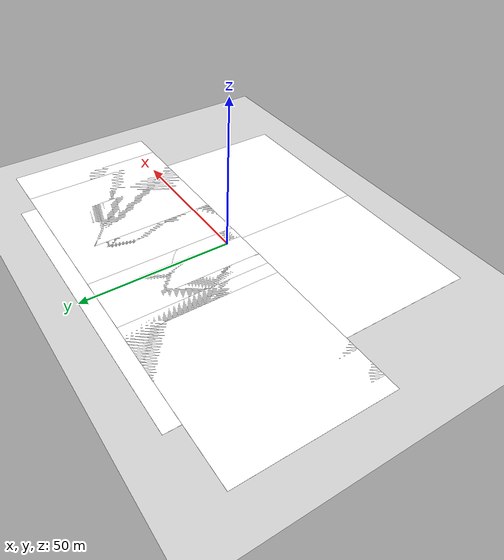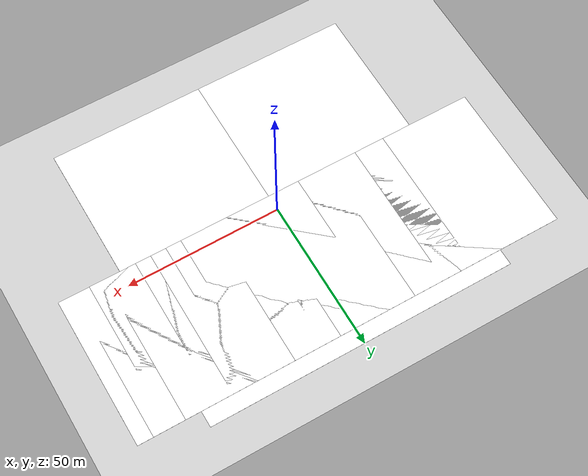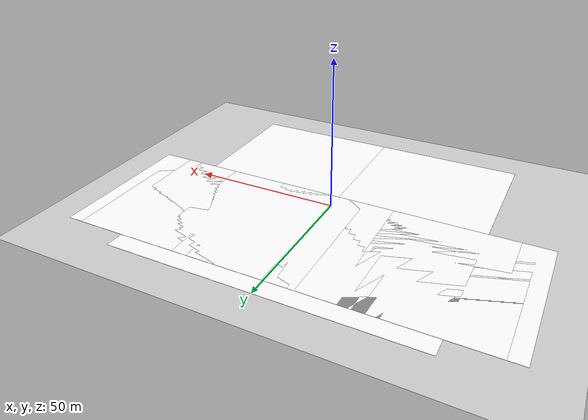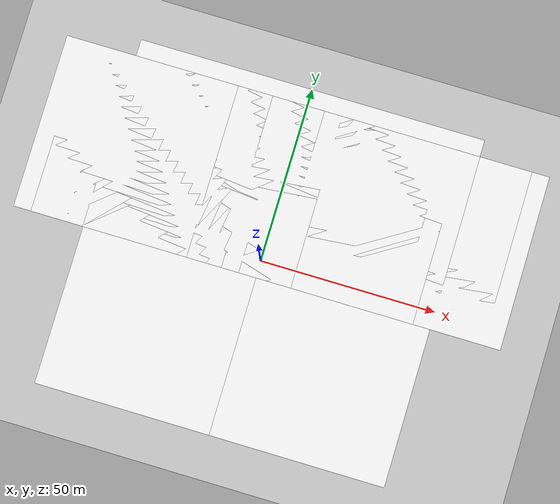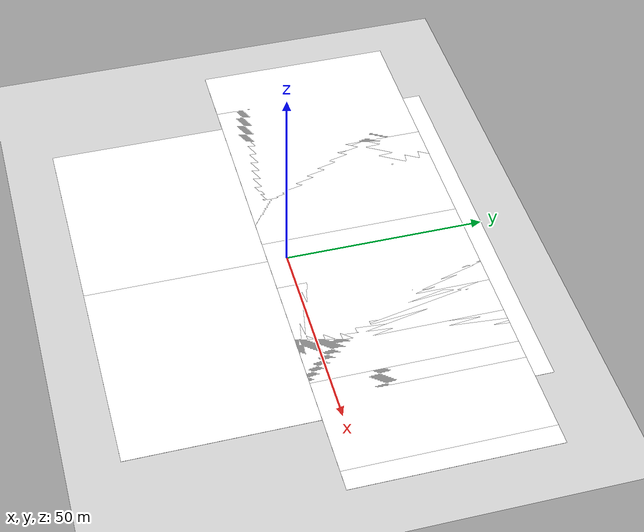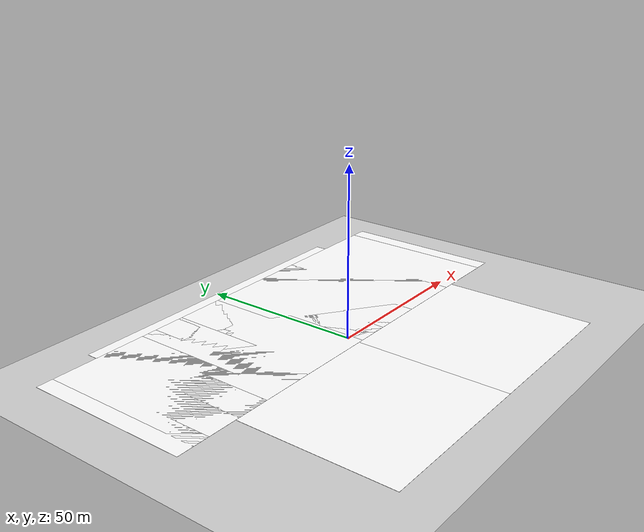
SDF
<sdf version="1.9">
 <world name="impact_site">
  <physics name="1ms" type="ignore">
   <max_step_size>0.001</max_step_size>
   <real_time_factor>1.0</real_time_factor>
  </physics>
  <plugin filename="gz-sim-physics-system" name="gz::sim::systems::Physics"/>
  <plugin filename="gz-sim-sensors-system" name="gz::sim::systems::Sensors">
   <render_engine>ogre2</render_engine>
  </plugin>
  <plugin filename="gz-sim-user-commands-system" name="gz::sim::systems::UserCommands"/>
  <plugin filename="gz-sim-scene-broadcaster-system" name="gz::sim::systems::SceneBroadcaster"/>
  <plugin filename="gz-sim-imu-system" name="gz::sim::systems::Imu"/>
  <plugin filename="gz-sim-navsat-system" name="gz::sim::systems::NavSat"/>
  <scene><ambient>1.0 1.0 1.0</ambient><background>0.8 0.8 0.8</background></scene>
  <spherical_coordinates>
   <latitude_deg>-35.363262</latitude_deg>
   <longitude_deg>149.165237</longitude_deg>
   <elevation>584</elevation>
   <heading_deg>0</heading_deg>
   <surface_model>EARTH_WGS84</surface_model>
  </spherical_coordinates>
  <light type="directional" name="sun">
   <pose>0 0 10 0 0 0</pose>
   <diffuse>0.8 0.8 0.8 1</diffuse>
   <specular>0.8 0.8 0.8 1</specular>
   <attenuation>
    <range>1000</range>
    <constant>0.9</constant>
    <linear>0.01</linear>
    <quadratic>0.001</quadratic>
   </attenuation>
   <direction>-0.5 0.1 -0.9</direction>
  </light>
  <include><uri>model://ground_plane</uri></include>
  <include><uri>model://grasspatch/1</uri><name>grasspatch</name><pose>-25 -25 0.001 0 0 0</pose></include>
  <include><uri>model://grasspatch/1</uri><name>grasspatch2</name><pose>-25 25 0.001 0 0 0</pose></include>
  <include><uri>model://grasspatch/1</uri><name>grasspatch3</name><pose>25 -25 0.001 0 0 0</pose></include>
  <include><uri>model://grasspatch/1</uri><name>grasspatch4</name><pose>25 25 0.001 0 0 0</pose></include>
  <include><uri>model://room_wall_2x5m/1</uri><name>wall_1</name><pose>-45 20 1.001 0 0 1.5708</pose></include>
  <include><uri>model://room_wall_2x5m/1</uri><name>wall_2</name><pose>-40 20 1.001 0 0 1.5708</pose></include>
  <include><uri>model://room_wall_2x5m/1</uri><name>wall_3</name><pose>-35 20 1.001 0 0 1.5708</pose></include>
  <include><uri>model://room_wall_2x5m/1</uri><name>wall_4</name><pose>-30 20 1.001 0 0 1.5708</pose></include>
  <include><uri>model://room_wall_2x5m/1</uri><name>wall_5</name><pose>-25 20 1.001 0 0 1.5708</pose></include>
  <include><uri>model://room_wall_2x5m/1</uri><name>wall_6</name><pose>-20 20 1.001 0 0 1.5708</pose></include>
  <include><uri>model://room_wall_2x5m/1</uri><name>wall_7</name><pose>-15 20 1.001 0 0 1.5708</pose></include>
  <include><uri>model://room_wall_2x5m/1</uri><name>wall_8</name><pose>-10 20 1.001 0 0 1.5708</pose></include>
  <include><uri>model://room_wall_2x5m/1</uri><name>wall_9</name><pose>-5 20 1.001 0 0 1.5708</pose></include>
  <include><uri>model://room_wall_2x5m/1</uri><name>wall_10</name><pose>0 20 1.001 0 0 1.5708</pose></include>
  <include><uri>model://room_wall_2x5m/1</uri><name>wall_11</name><pose>5 20 1.001 0 0 1.5708</pose></include>
  <include><uri>model://room_wall_2x5m/1</uri><name>wall_12</name><pose>10 20 1.001 0 0 1.5708</pose></include>
  <include><uri>model://room_wall_2x5m/1</uri><name>wall_13</name><pose>15 20 1.001 0 0 1.5708</pose></include>
  <include><uri>model://room_wall_2x5m/1</uri><name>wall_14</name><pose>20 20 1.001 0 0 1.5708</pose></include>
  <include><uri>model://room_wall_2x5m/1</uri><name>wall_15</name><pose>25 20 1.001 0 0 1.5708</pose></include>
  <include><uri>model://room_wall_2x5m/1</uri><name>wall_16</name><pose>30 20 1.001 0 0 1.5708</pose></include>
  <include><uri>model://room_wall_2x5m/1</uri><name>wall_17</name><pose>35 20 1.001 0 0 1.5708</pose></include>
  <include><uri>model://room_wall_2x5m/1</uri><name>wall_18</name><pose>40 20 1.001 0 0 1.5708</pose></include>
  <include><uri>model://room_wall_2x5m/1</uri><name>wall_19</name><pose>45 20 1.001 0 0 1.5708</pose></include>
 </world>
</sdf>

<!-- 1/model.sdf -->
<sdf version="1.4">
    <model name="grasspatch">
        <static>true</static>
        <link name="link">
            <collision name="collision">
                <pose>0 0 0 0 0 0</pose>
                <geometry>
                    <plane>
                        <normal>0 0 1</normal>
                        <size>15 15</size>
                    </plane>
                </geometry>
                <surface>
                    <friction>
                        <ode>
                            <mu>0.5</mu>
                            <mu2>.5</mu2>
                        </ode>
                    </friction>
                </surface>
            </collision>
            <visual name="visual_s10">
                <pose>0 0 0 0 0 0</pose>
                <cast_shadows>false</cast_shadows>
                <geometry>
                    <plane>
                        <normal>0 0 1</normal>
                        <size>50 50</size>
                    </plane>
                </geometry>
                <material>
                    <diffuse>1.0 1.0 1.0</diffuse>
                    <specular>1.0 1.0 1.0</specular>
                    <pbr>
                        <metal>
                            <albedo_map>materials/textures/grass_dry.png</albedo_map>
                            <normal_map>materials/textures/grass_dry.png</normal_map>
                        </metal>
                    </pbr>
                </material>
            </visual>
        </link>
    </model>
</sdf>
